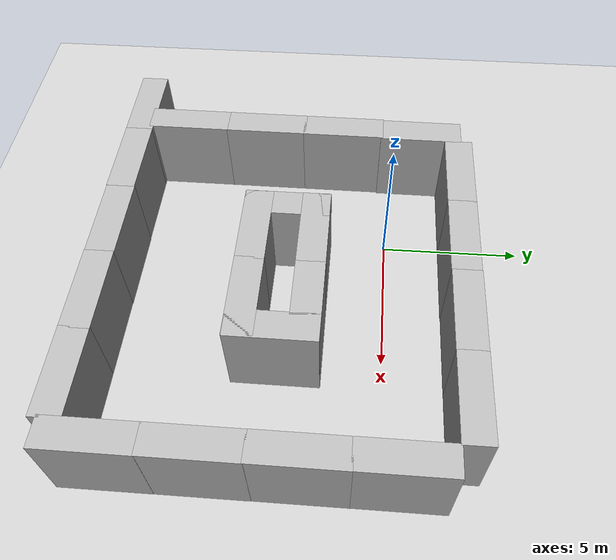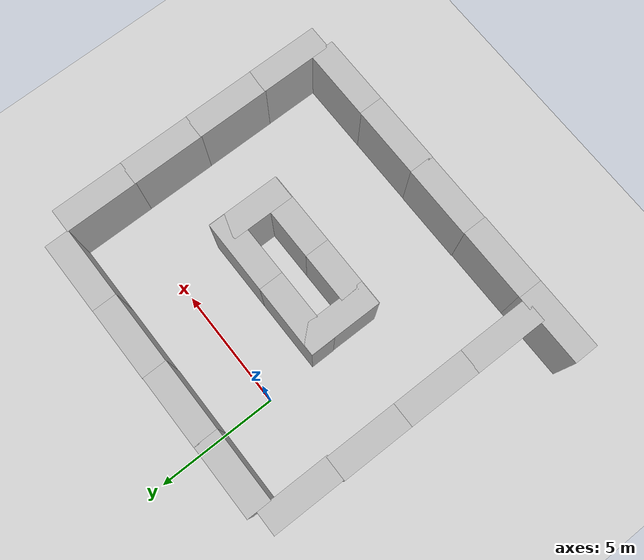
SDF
<sdf version="1.7">
 <world name="default">
  <light name="sun" type="directional">
   <pose>0 0 10 0 -0 0</pose>
   <diffuse>0.8 0.8 0.8 1</diffuse>
   <specular>0.2 0.2 0.2 1</specular>
   <attenuation>
    <range>1000</range>
    <constant>0.9</constant>
    <linear>0.01</linear>
    <quadratic>0.001</quadratic>
   </attenuation>
   <direction>-0.5 0.1 -0.9</direction>
   <spot><inner_angle>0</inner_angle><outer_angle>0</outer_angle><falloff>0</falloff></spot>
  </light>
  <model name="ground_plane">
   <static>1</static>
   <link name="link">
    <collision name="collision">
     <geometry><plane><normal>0 0 1</normal><size>100 100</size></plane></geometry>
     <surface>
      <contact><collide_bitmask>65535</collide_bitmask></contact>
      <friction><ode><mu>100</mu><mu2>50</mu2></ode></friction>
     </surface>
    </collision>
    <visual name="visual">
     <cast_shadows>0</cast_shadows>
     <geometry><plane><normal>0 0 1</normal><size>100 100</size></plane></geometry>
     <material>
      <script><uri>file://media/materials/scripts/gazebo.material</uri><name>Gazebo/Grey</name></script>
     </material>
    </visual>
   </link>
  </model>
  <gravity>0 0 -9.8</gravity>
  <magnetic_field>6e-06 2.3e-05 -4.2e-05</magnetic_field>
  <atmosphere type="adiabatic"/>
  <physics type="ode">
   <max_step_size>0.001</max_step_size>
   <real_time_factor>1</real_time_factor>
   <real_time_update_rate>1000</real_time_update_rate>
  </physics>
  <scene><ambient>0.4 0.4 0.4 1</ambient><background>0.7 0.7 0.7 1</background><shadows>1</shadows></scene>
  <spherical_coordinates>
   <surface_model>EARTH_WGS84</surface_model>
   <latitude_deg>0</latitude_deg>
   <longitude_deg>0</longitude_deg>
   <elevation>0</elevation>
   <heading_deg>0</heading_deg>
  </spherical_coordinates>
  <model name="brick_box_3x1x3">
   <static>1</static>
   <link name="chassis">
    <pose>0 0 1.5 0 -0 0</pose>
    <collision name="collision"><geometry><box><size>3 1 3</size></box></geometry></collision>
    <visual name="visual">
     <geometry><mesh><uri>model://brick_box_3x1x3/meshes/simple_box.dae</uri><scale>3 1 3</scale></mesh></geometry>
     <material>
      <script>
       <uri>model://brick_box_3x1x3/materials/scripts</uri>
       <uri>model://brick_box_3x1x3/materials/textures</uri>
       <name>BrickBox/Diffuse</name>
      </script>
     </material>
    </visual>
   </link>
   <pose>1.52927 2.54625 0 0 -0 0</pose>
  </model>
  <model name="brick_box_3x1x3_0">
   <static>1</static>
   <link name="chassis">
    <pose>0 0 1.5 0 -0 0</pose>
    <collision name="collision"><geometry><box><size>3 1 3</size></box></geometry></collision>
    <visual name="visual">
     <geometry><mesh><uri>model://brick_box_3x1x3/meshes/simple_box.dae</uri><scale>3 1 3</scale></mesh></geometry>
     <material>
      <script>
       <uri>model://brick_box_3x1x3/materials/scripts</uri>
       <uri>model://brick_box_3x1x3/materials/textures</uri>
       <name>BrickBox/Diffuse</name>
      </script>
     </material>
    </visual>
   </link>
   <pose>4.52572 2.55955 0 0 -0 0</pose>
  </model>
  <model name="brick_box_3x1x3_1">
   <static>1</static>
   <link name="chassis">
    <pose>0 0 1.5 0 -0 0</pose>
    <collision name="collision"><geometry><box><size>3 1 3</size></box></geometry></collision>
    <visual name="visual">
     <geometry><mesh><uri>model://brick_box_3x1x3/meshes/simple_box.dae</uri><scale>3 1 3</scale></mesh></geometry>
     <material>
      <script>
       <uri>model://brick_box_3x1x3/materials/scripts</uri>
       <uri>model://brick_box_3x1x3/materials/textures</uri>
       <name>BrickBox/Diffuse</name>
      </script>
     </material>
    </visual>
   </link>
   <pose>7.50741 2.56384 0 0 -0 0</pose>
  </model>
  <model name="brick_box_3x1x3_2">
   <static>1</static>
   <link name="chassis">
    <pose>0 0 1.5 0 -0 0</pose>
    <collision name="collision"><geometry><box><size>3 1 3</size></box></geometry></collision>
    <visual name="visual">
     <geometry><mesh><uri>model://brick_box_3x1x3/meshes/simple_box.dae</uri><scale>3 1 3</scale></mesh></geometry>
     <material>
      <script>
       <uri>model://brick_box_3x1x3/materials/scripts</uri>
       <uri>model://brick_box_3x1x3/materials/textures</uri>
       <name>BrickBox/Diffuse</name>
      </script>
     </material>
    </visual>
   </link>
   <pose>1.53042 -2.51928 0 0 -0 0</pose>
  </model>
  <model name="brick_box_3x1x3_3">
   <static>1</static>
   <link name="chassis">
    <pose>0 0 1.5 0 -0 0</pose>
    <collision name="collision"><geometry><box><size>3 1 3</size></box></geometry></collision>
    <visual name="visual">
     <geometry><mesh><uri>model://brick_box_3x1x3/meshes/simple_box.dae</uri><scale>3 1 3</scale></mesh></geometry>
     <material>
      <script>
       <uri>model://brick_box_3x1x3/materials/scripts</uri>
       <uri>model://brick_box_3x1x3/materials/textures</uri>
       <name>BrickBox/Diffuse</name>
      </script>
     </material>
    </visual>
   </link>
   <pose>4.52366 -2.51816 0 0 -0 0</pose>
  </model>
  <model name="brick_box_3x1x3_4">
   <static>1</static>
   <link name="chassis">
    <pose>0 0 1.5 0 -0 0</pose>
    <collision name="collision"><geometry><box><size>3 1 3</size></box></geometry></collision>
    <visual name="visual">
     <geometry><mesh><uri>model://brick_box_3x1x3/meshes/simple_box.dae</uri><scale>3 1 3</scale></mesh></geometry>
     <material>
      <script>
       <uri>model://brick_box_3x1x3/materials/scripts</uri>
       <uri>model://brick_box_3x1x3/materials/textures</uri>
       <name>BrickBox/Diffuse</name>
      </script>
     </material>
    </visual>
   </link>
   <pose>5.53272 -3.524 0 0 0 -1.5765</pose>
  </model>
  <model name="brick_box_3x1x3_4_clone">
   <static>1</static>
   <link name="chassis">
    <pose>0 0 1.5 0 -0 0</pose>
    <collision name="collision"><geometry><box><size>3 1 3</size></box></geometry></collision>
    <visual name="visual">
     <geometry><mesh><uri>model://brick_box_3x1x3/meshes/simple_box.dae</uri><scale>3 1 3</scale></mesh></geometry>
     <material>
      <script>
       <uri>model://brick_box_3x1x3/materials/scripts</uri>
       <uri>model://brick_box_3x1x3/materials/textures</uri>
       <name>BrickBox/Diffuse</name>
      </script>
     </material>
    </visual>
   </link>
   <pose>0.54075 -3.53074 0 0 0 -1.5765</pose>
  </model>
  <model name="brick_box_3x1x3_2_clone">
   <static>1</static>
   <link name="chassis">
    <pose>0 0 1.5 0 -0 0</pose>
    <collision name="collision"><geometry><box><size>3 1 3</size></box></geometry></collision>
    <visual name="visual">
     <geometry><mesh><uri>model://brick_box_3x1x3/meshes/simple_box.dae</uri><scale>3 1 3</scale></mesh></geometry>
     <material>
      <script>
       <uri>model://brick_box_3x1x3/materials/scripts</uri>
       <uri>model://brick_box_3x1x3/materials/textures</uri>
       <name>BrickBox/Diffuse</name>
      </script>
     </material>
    </visual>
   </link>
   <pose>1.54143 -4.54309 0 0 -0 0</pose>
  </model>
  <model name="brick_box_3x1x3_3_clone">
   <static>1</static>
   <link name="chassis">
    <pose>0 0 1.5 0 -0 0</pose>
    <collision name="collision"><geometry><box><size>3 1 3</size></box></geometry></collision>
    <visual name="visual">
     <geometry><mesh><uri>model://brick_box_3x1x3/meshes/simple_box.dae</uri><scale>3 1 3</scale></mesh></geometry>
     <material>
      <script>
       <uri>model://brick_box_3x1x3/materials/scripts</uri>
       <uri>model://brick_box_3x1x3/materials/textures</uri>
       <name>BrickBox/Diffuse</name>
      </script>
     </material>
    </visual>
   </link>
   <pose>4.47432 -4.54246 0 0 -0 0</pose>
  </model>
  <model name="brick_box_3x1x3_4_clone_0">
   <static>1</static>
   <link name="chassis">
    <pose>0 0 1.5 0 -0 0</pose>
    <collision name="collision"><geometry><box><size>3 1 3</size></box></geometry></collision>
    <visual name="visual">
     <geometry><mesh><uri>model://brick_box_3x1x3/meshes/simple_box.dae</uri><scale>3 1 3</scale></mesh></geometry>
     <material>
      <script>
       <uri>model://brick_box_3x1x3/materials/scripts</uri>
       <uri>model://brick_box_3x1x3/materials/textures</uri>
       <name>BrickBox/Diffuse</name>
      </script>
     </material>
    </visual>
   </link>
   <pose>9.45988 0.608974 0 0 0 -1.5765</pose>
  </model>
  <model name="brick_box_3x1x3_4_clone_0_clone">
   <static>1</static>
   <link name="chassis">
    <pose>0 0 1.5 0 -0 0</pose>
    <collision name="collision"><geometry><box><size>3 1 3</size></box></geometry></collision>
    <visual name="visual">
     <geometry><mesh><uri>model://brick_box_3x1x3/meshes/simple_box.dae</uri><scale>3 1 3</scale></mesh></geometry>
     <material>
      <script>
       <uri>model://brick_box_3x1x3/materials/scripts</uri>
       <uri>model://brick_box_3x1x3/materials/textures</uri>
       <name>BrickBox/Diffuse</name>
      </script>
     </material>
    </visual>
   </link>
   <pose>9.44688 -2.34309 0 0 0 -1.5765</pose>
  </model>
  <model name="brick_box_3x1x3_4_clone_0_clone_0">
   <static>1</static>
   <link name="chassis">
    <pose>0 0 1.5 0 -0 0</pose>
    <collision name="collision"><geometry><box><size>3 1 3</size></box></geometry></collision>
    <visual name="visual">
     <geometry><mesh><uri>model://brick_box_3x1x3/meshes/simple_box.dae</uri><scale>3 1 3</scale></mesh></geometry>
     <material>
      <script>
       <uri>model://brick_box_3x1x3/materials/scripts</uri>
       <uri>model://brick_box_3x1x3/materials/textures</uri>
       <name>BrickBox/Diffuse</name>
      </script>
     </material>
    </visual>
   </link>
   <pose>9.43705 -5.30386 0 0 0 -1.5765</pose>
  </model>
  <model name="brick_box_3x1x3_4_clone_0_clone_1">
   <static>1</static>
   <link name="chassis">
    <pose>0 0 1.5 0 -0 0</pose>
    <collision name="collision"><geometry><box><size>3 1 3</size></box></geometry></collision>
    <visual name="visual">
     <geometry><mesh><uri>model://brick_box_3x1x3/meshes/simple_box.dae</uri><scale>3 1 3</scale></mesh></geometry>
     <material>
      <script>
       <uri>model://brick_box_3x1x3/materials/scripts</uri>
       <uri>model://brick_box_3x1x3/materials/textures</uri>
       <name>BrickBox/Diffuse</name>
      </script>
     </material>
    </visual>
   </link>
   <pose>9.42534 -8.27152 0 0 0 -1.5765</pose>
  </model>
  <model name="brick_box_3x1x3_3_clone_clone">
   <static>1</static>
   <link name="chassis">
    <pose>0 0 1.5 0 -0 0</pose>
    <collision name="collision"><geometry><box><size>3 1 3</size></box></geometry></collision>
    <visual name="visual">
     <geometry><mesh><uri>model://brick_box_3x1x3/meshes/simple_box.dae</uri><scale>3 1 3</scale></mesh></geometry>
     <material>
      <script>
       <uri>model://brick_box_3x1x3/materials/scripts</uri>
       <uri>model://brick_box_3x1x3/materials/textures</uri>
       <name>BrickBox/Diffuse</name>
      </script>
     </material>
    </visual>
   </link>
   <pose>7.50409 -9.51379 0 0 -0 0</pose>
  </model>
  <model name="brick_box_3x1x3_3_clone_clone_0">
   <static>1</static>
   <link name="chassis">
    <pose>0 0 1.5 0 -0 0</pose>
    <collision name="collision"><geometry><box><size>3 1 3</size></box></geometry></collision>
    <visual name="visual">
     <geometry><mesh><uri>model://brick_box_3x1x3/meshes/simple_box.dae</uri><scale>3 1 3</scale></mesh></geometry>
     <material>
      <script>
       <uri>model://brick_box_3x1x3/materials/scripts</uri>
       <uri>model://brick_box_3x1x3/materials/textures</uri>
       <name>BrickBox/Diffuse</name>
      </script>
     </material>
    </visual>
   </link>
   <pose>4.55807 -9.51473 0 0 -0 0</pose>
  </model>
  <model name="brick_box_3x1x3_3_clone_clone_1">
   <static>1</static>
   <link name="chassis">
    <pose>0 0 1.5 0 -0 0</pose>
    <collision name="collision"><geometry><box><size>3 1 3</size></box></geometry></collision>
    <visual name="visual">
     <geometry><mesh><uri>model://brick_box_3x1x3/meshes/simple_box.dae</uri><scale>3 1 3</scale></mesh></geometry>
     <material>
      <script>
       <uri>model://brick_box_3x1x3/materials/scripts</uri>
       <uri>model://brick_box_3x1x3/materials/textures</uri>
       <name>BrickBox/Diffuse</name>
      </script>
     </material>
    </visual>
   </link>
   <pose>1.61758 -9.50493 0 0 -0 0</pose>
  </model>
  <model name="brick_box_3x1x3_3_clone_clone_2">
   <static>1</static>
   <link name="chassis">
    <pose>0 0 1.5 0 -0 0</pose>
    <collision name="collision"><geometry><box><size>3 1 3</size></box></geometry></collision>
    <visual name="visual">
     <geometry><mesh><uri>model://brick_box_3x1x3/meshes/simple_box.dae</uri><scale>3 1 3</scale></mesh></geometry>
     <material>
      <script>
       <uri>model://brick_box_3x1x3/materials/scripts</uri>
       <uri>model://brick_box_3x1x3/materials/textures</uri>
       <name>BrickBox/Diffuse</name>
      </script>
     </material>
    </visual>
   </link>
   <pose>-1.36306 -9.52172 0 0 -0 0</pose>
  </model>
  <model name="brick_box_3x1x3_3_clone_clone_3">
   <static>1</static>
   <link name="chassis">
    <pose>0 0 1.5 0 -0 0</pose>
    <collision name="collision"><geometry><box><size>3 1 3</size></box></geometry></collision>
    <visual name="visual">
     <geometry><mesh><uri>model://brick_box_3x1x3/meshes/simple_box.dae</uri><scale>3 1 3</scale></mesh></geometry>
     <material>
      <script>
       <uri>model://brick_box_3x1x3/materials/scripts</uri>
       <uri>model://brick_box_3x1x3/materials/textures</uri>
       <name>BrickBox/Diffuse</name>
      </script>
     </material>
    </visual>
   </link>
   <pose>-4.31791 -9.5211 0 0 -0 0</pose>
  </model>
  <model name="brick_box_3x1x3_4_clone_clone">
   <static>1</static>
   <link name="chassis">
    <pose>0 0 1.5 0 -0 0</pose>
    <collision name="collision"><geometry><box><size>3 1 3</size></box></geometry></collision>
    <visual name="visual">
     <geometry><mesh><uri>model://brick_box_3x1x3/meshes/simple_box.dae</uri><scale>3 1 3</scale></mesh></geometry>
     <material>
      <script>
       <uri>model://brick_box_3x1x3/materials/scripts</uri>
       <uri>model://brick_box_3x1x3/materials/textures</uri>
       <name>BrickBox/Diffuse</name>
      </script>
     </material>
    </visual>
   </link>
   <pose>-3.50952 -7.67041 0 0 0 -1.5765</pose>
  </model>
  <model name="brick_box_3x1x3_4_clone_clone_0">
   <static>1</static>
   <link name="chassis">
    <pose>0 0 1.5 0 -0 0</pose>
    <collision name="collision"><geometry><box><size>3 1 3</size></box></geometry></collision>
    <visual name="visual">
     <geometry><mesh><uri>model://brick_box_3x1x3/meshes/simple_box.dae</uri><scale>3 1 3</scale></mesh></geometry>
     <material>
      <script>
       <uri>model://brick_box_3x1x3/materials/scripts</uri>
       <uri>model://brick_box_3x1x3/materials/textures</uri>
       <name>BrickBox/Diffuse</name>
      </script>
     </material>
    </visual>
   </link>
   <pose>-3.49216 -4.69416 0 0 0 -1.5765</pose>
  </model>
  <model name="brick_box_3x1x3_4_clone_clone_1">
   <static>1</static>
   <link name="chassis">
    <pose>0 0 1.5 0 -0 0</pose>
    <collision name="collision"><geometry><box><size>3 1 3</size></box></geometry></collision>
    <visual name="visual">
     <geometry><mesh><uri>model://brick_box_3x1x3/meshes/simple_box.dae</uri><scale>3 1 3</scale></mesh></geometry>
     <material>
      <script>
       <uri>model://brick_box_3x1x3/materials/scripts</uri>
       <uri>model://brick_box_3x1x3/materials/textures</uri>
       <name>BrickBox/Diffuse</name>
      </script>
     </material>
    </visual>
   </link>
   <pose>-3.47404 -1.77235 0 0 0 -1.5765</pose>
  </model>
  <model name="brick_box_3x1x3_4_clone_clone_2">
   <static>1</static>
   <link name="chassis">
    <pose>0 0 1.5 0 -0 0</pose>
    <collision name="collision"><geometry><box><size>3 1 3</size></box></geometry></collision>
    <visual name="visual">
     <geometry><mesh><uri>model://brick_box_3x1x3/meshes/simple_box.dae</uri><scale>3 1 3</scale></mesh></geometry>
     <material>
      <script>
       <uri>model://brick_box_3x1x3/materials/scripts</uri>
       <uri>model://brick_box_3x1x3/materials/textures</uri>
       <name>BrickBox/Diffuse</name>
      </script>
     </material>
    </visual>
   </link>
   <pose>-3.41795 1.1515 0 0 0 -1.5765</pose>
  </model>
  <model name="brick_box_3x1x3_clone">
   <static>1</static>
   <link name="chassis">
    <pose>0 0 1.5 0 -0 0</pose>
    <collision name="collision"><geometry><box><size>3 1 3</size></box></geometry></collision>
    <visual name="visual">
     <geometry><mesh><uri>model://brick_box_3x1x3/meshes/simple_box.dae</uri><scale>3 1 3</scale></mesh></geometry>
     <material>
      <script>
       <uri>model://brick_box_3x1x3/materials/scripts</uri>
       <uri>model://brick_box_3x1x3/materials/textures</uri>
       <name>BrickBox/Diffuse</name>
      </script>
     </material>
    </visual>
   </link>
   <pose>-1.44038 2.54155 0 0 -0 0</pose>
  </model>
 </world>
</sdf>
